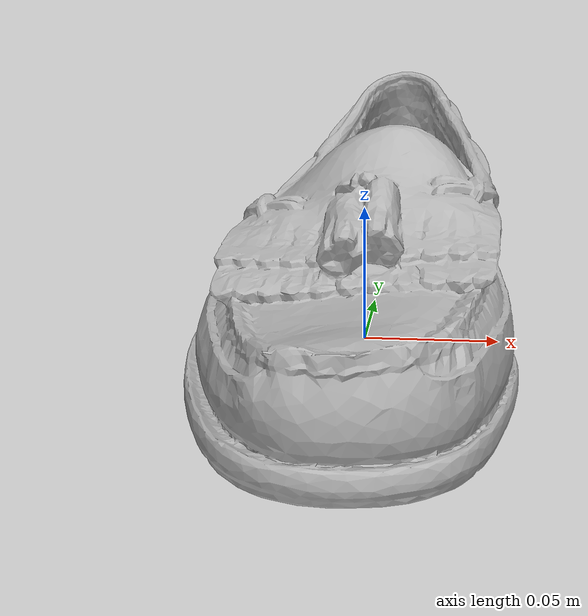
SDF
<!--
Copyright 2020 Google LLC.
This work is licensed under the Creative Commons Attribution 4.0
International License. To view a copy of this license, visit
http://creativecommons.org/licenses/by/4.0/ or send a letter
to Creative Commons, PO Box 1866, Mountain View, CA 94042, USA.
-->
<?xml version="1.0" ?>
<sdf version="1.6">
  <model name="Mens_Tremont_Kiltie_Tassel_Loafer_in_Black_Amaretto_rCdzRZqgCnI">
    <link name="link_0">
      <visual name="visual">
        <geometry>
          <mesh>
            <uri>meshes/model.obj</uri>
          </mesh>
        </geometry>
      </visual>
      <collision name="collision_0">
        <geometry>
          <mesh>
            <uri>meshes/model.obj</uri>
          </mesh>
        </geometry>
      </collision>
    </link>
  </model>
</sdf>
